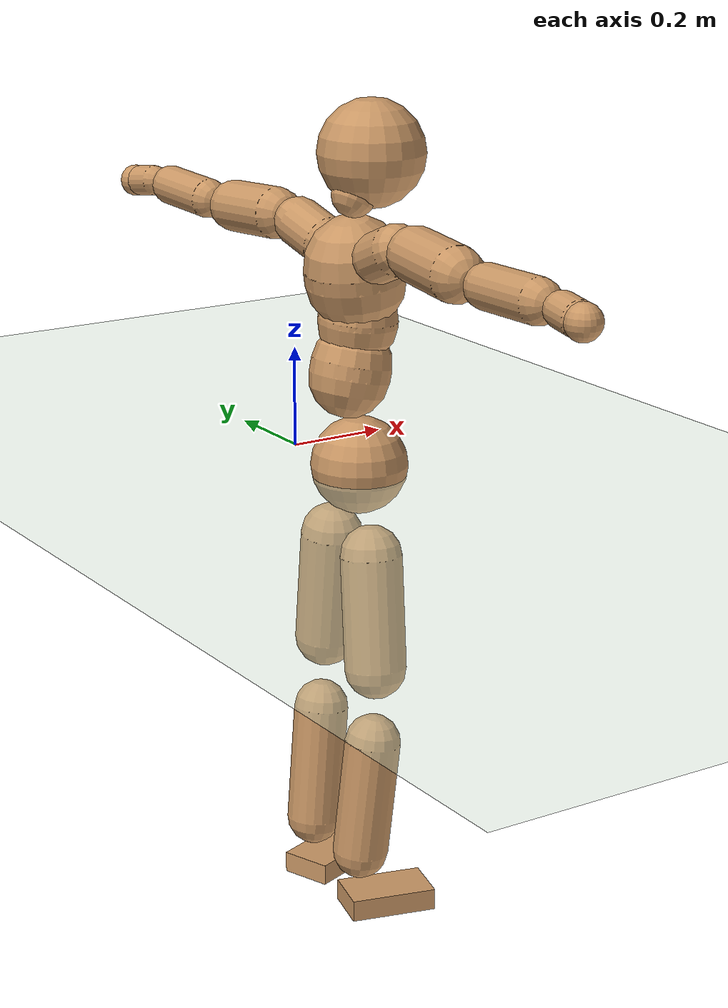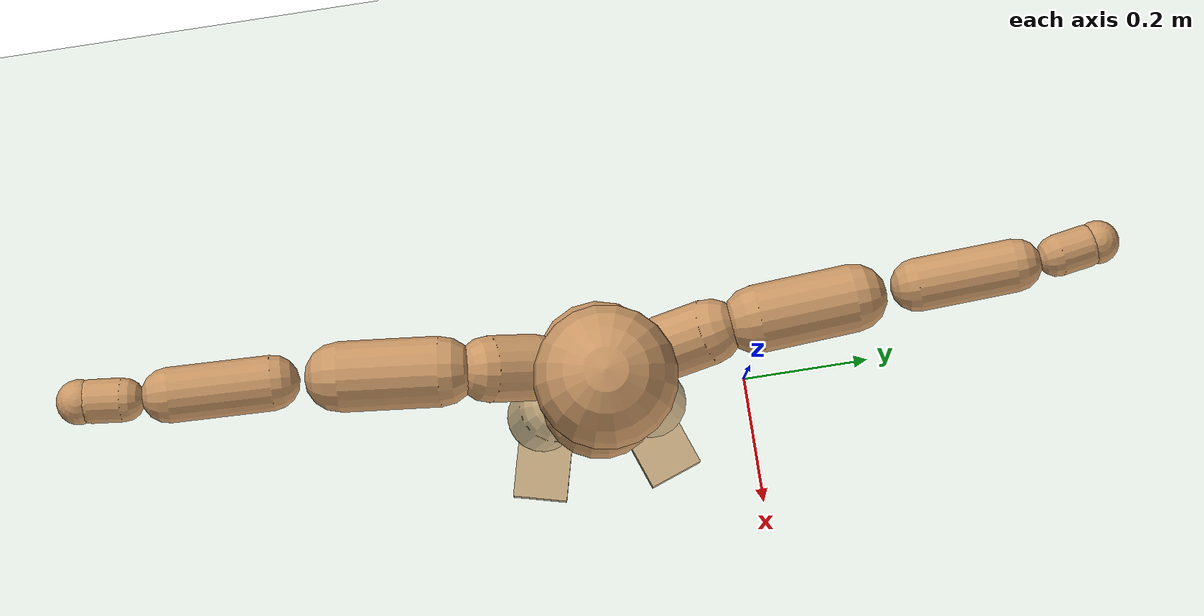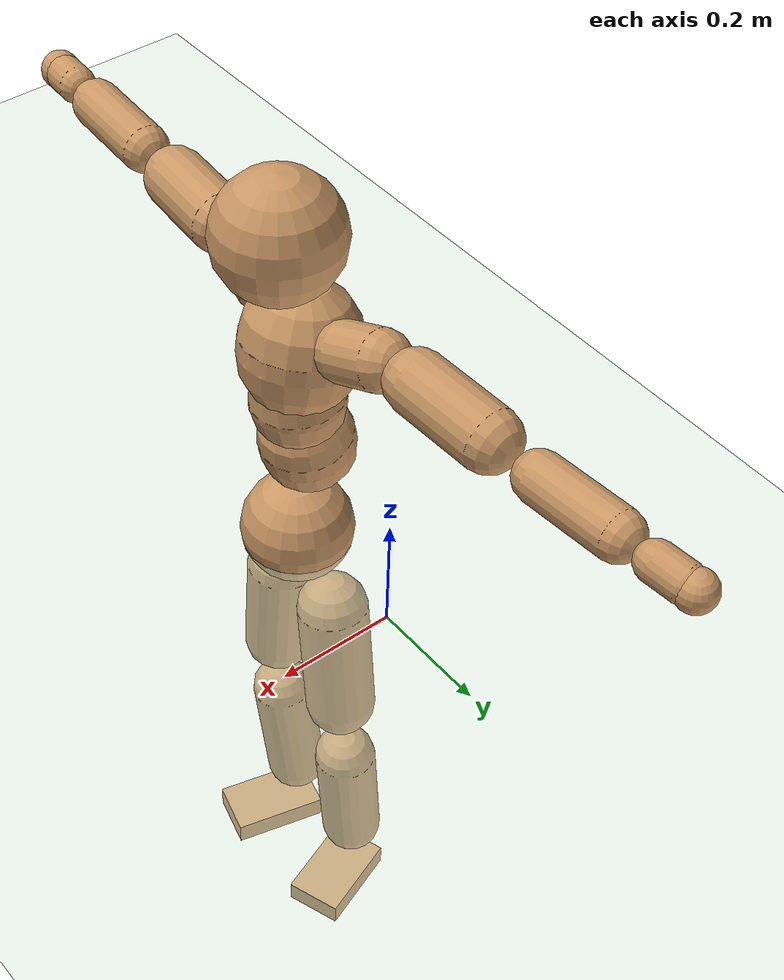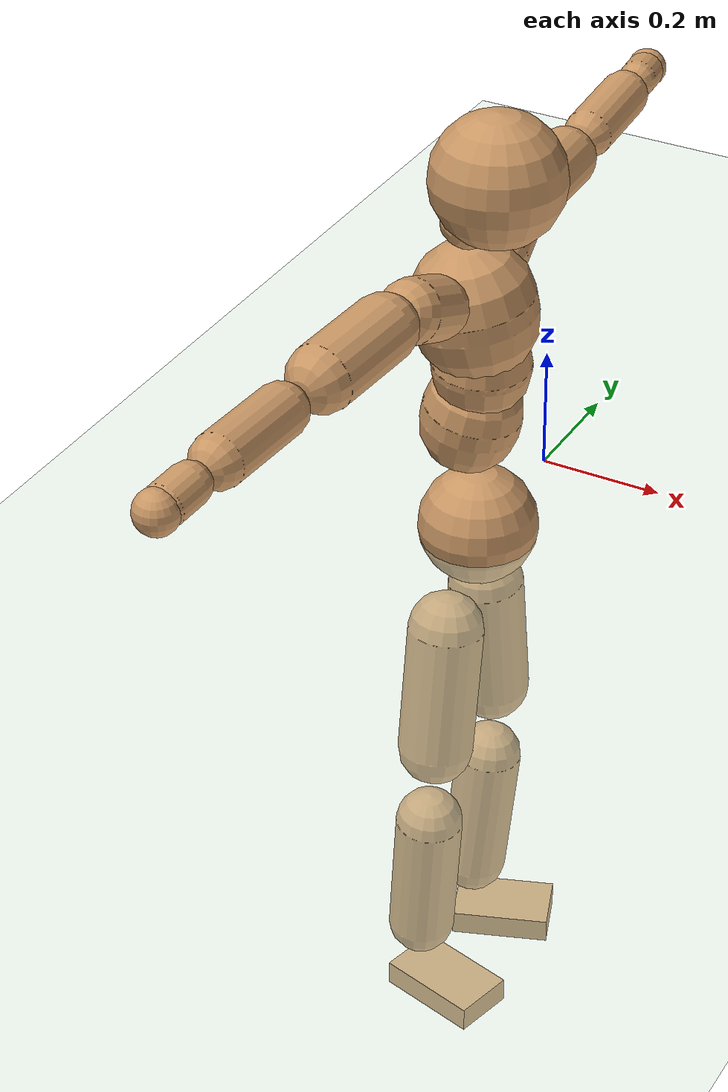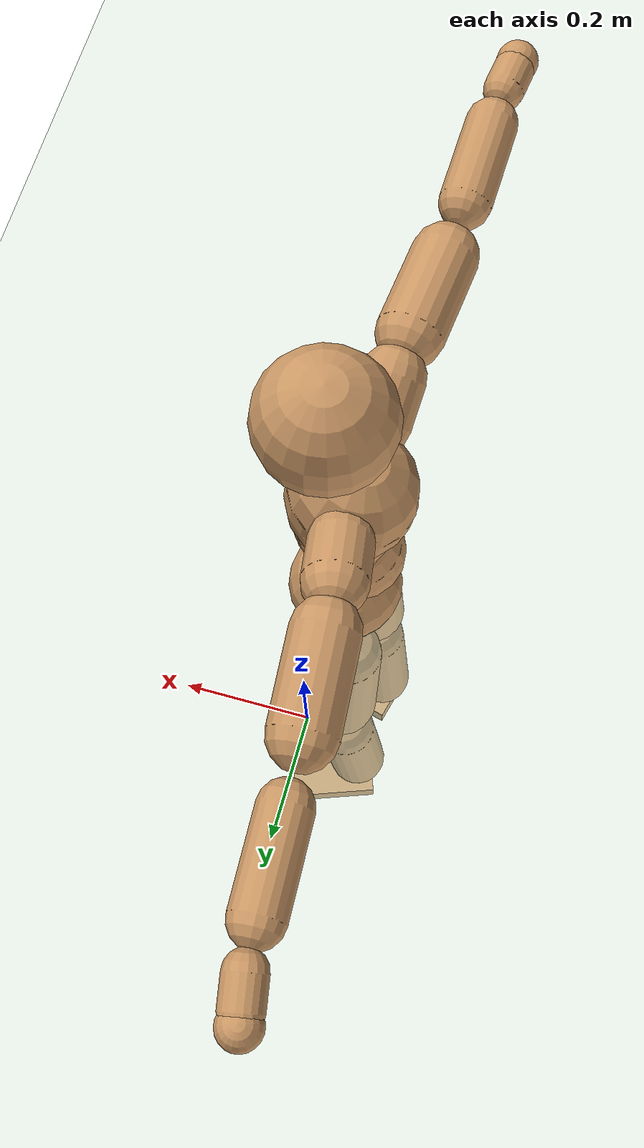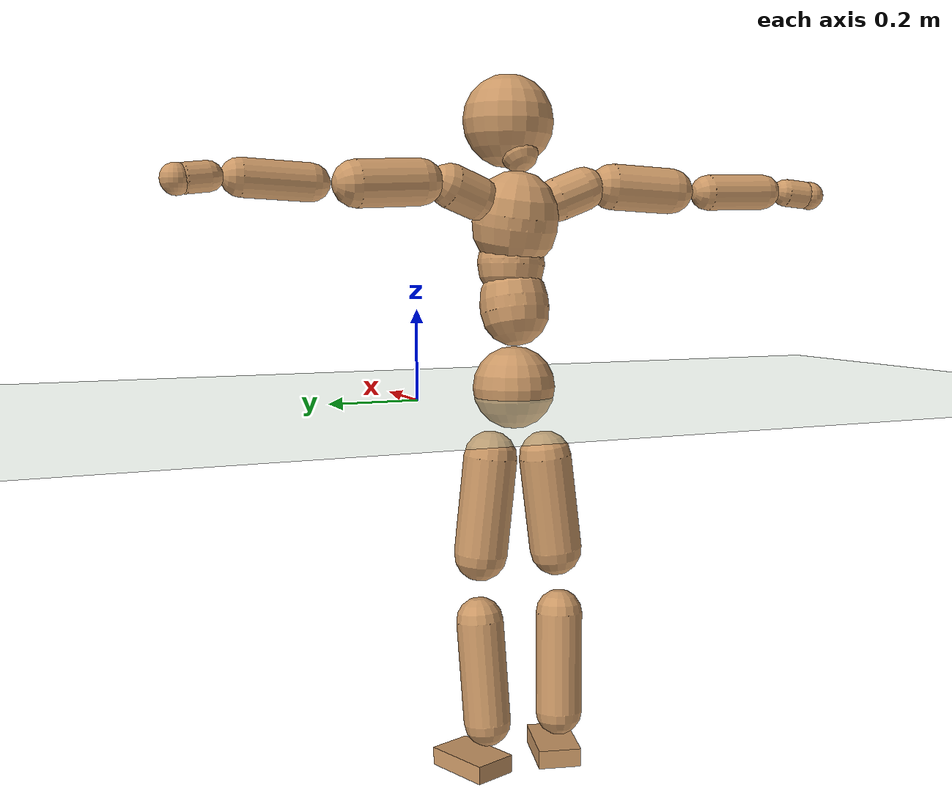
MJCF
<mujoco model="humanoid">
  <compiler coordinate="local" angle="radian"/>
  <default>
    <joint damping="0.0" armature="0.01" stiffness="0.0" limited="true"/>
    <geom conaffinity="1" condim="3" contype="7" margin="0.001" rgba="0.8 0.6 .4 1"/>
  </default>
  <asset>
    <texture type="skybox" builtin="gradient" rgb1=".4 .5 .6" rgb2="0 0 0" width="100" height="100"/>
    <texture builtin="flat" height="1278" mark="cross" markrgb="1 1 1" name="texgeom" random="0.01" rgb1="0.8 0.6 0.4" rgb2="0.8 0.6 0.4" type="cube" width="127"/>
    <texture builtin="checker" height="100" name="texplane" rgb1="0 0 0" rgb2="0.8 0.8 0.8" type="2d" width="100"/>
    <material name="MatPlane" reflectance="0.5" shininess="1" specular="1" texrepeat="60 60" texture="texplane"/>
    <material name="geom" texture="texgeom" texuniform="true"/>
  </asset>
  <worldbody>
    <light cutoff="100" diffuse="1 1 1" dir="-0 0 -1.3" directional="true" exponent="1" pos="0 0 1.3" specular=".1 .1 .1"/>
    <geom conaffinity="1" condim="3" name="floor" pos="0 0 0" rgba="0.8 0.9 0.8 1" size="100 100 .2" type="plane" material="MatPlane"/>
    <body name="Pelvis" pos="0.0009 -0.2327 0.0194">
      <freejoint name="Pelvis"/>
      <geom type="sphere" contype="1" conaffinity="1" density="500" size="0.0943" pos="0.0000 0.0000 0.0000" name="Pelvis"/>
      <body name="L_Hip" pos="-0.0205 0.059 -0.0807">
        <joint name="L_Hip_x" type="hinge" pos="0 0 0" axis="1 0 0" stiffness="800" damping="80" armature="0.02" range="-180.0000 180.0000"/>
        <joint name="L_Hip_y" type="hinge" pos="0 0 0" axis="0 1 0" stiffness="800" damping="80" armature="0.02" range="-180.0000 180.0000"/>
        <joint name="L_Hip_z" type="hinge" pos="0 0 0" axis="0 0 1" stiffness="800" damping="80" armature="0.02" range="-180.0000 180.0000"/>
        <geom type="capsule" contype="1" conaffinity="1" density="500" fromto="0.0005 0.0083 -0.0743 0.0019 0.0330 -0.2973" size="0.0607" name="L_Hip"/>
        <body name="L_Knee" pos="0.0024 0.0413 -0.3716">
          <joint name="L_Knee_x" type="hinge" pos="0 0 0" axis="1 0 0" stiffness="800" damping="80" armature="0.02" range="-180.0000 180.0000"/>
          <joint name="L_Knee_y" type="hinge" pos="0 0 0" axis="0 1 0" stiffness="800" damping="80" armature="0.02" range="-180.0000 180.0000"/>
          <joint name="L_Knee_z" type="hinge" pos="0 0 0" axis="0 0 1" stiffness="800" damping="80" armature="0.02" range="-180.0000 180.0000"/>
          <geom type="capsule" contype="1" conaffinity="1" density="500" fromto="-0.0075 -0.0027 -0.0789 -0.0299 -0.0107 -0.3156" size="0.054" name="L_Knee"/>
          <body name="L_Ankle" pos="-0.0374 -0.0134 -0.3945">
            <joint name="L_Ankle_x" type="hinge" pos="0 0 0" axis="1 0 0" stiffness="800" damping="80" armature="0.02" range="-180.0000 180.0000"/>
            <joint name="L_Ankle_y" type="hinge" pos="0 0 0" axis="0 1 0" stiffness="800" damping="80" armature="0.02" range="-180.0000 180.0000"/>
            <joint name="L_Ankle_z" type="hinge" pos="0 0 0" axis="0 0 1" stiffness="800" damping="80" armature="0.02" range="-180.0000 180.0000"/>
            <geom type="box" contype="1" conaffinity="1" density="500" pos="0.0570 0.0206 -0.0283" size="0.0815 0.0505 0.0209" quat="0.9849 0.0000 0.0000 0.1729" name="L_Ankle"/>
            <body name="L_Toe" pos="0.114 0.0413 -0.0565">
              <joint name="L_Toe_x" type="hinge" pos="0 0 0" axis="1 0 0" stiffness="500" damping="50" armature="0.02" range="-180.0000 180.0000"/>
              <joint name="L_Toe_y" type="hinge" pos="0 0 0" axis="0 1 0" stiffness="500" damping="50" armature="0.02" range="-180.0000 180.0000"/>
              <joint name="L_Toe_z" type="hinge" pos="0 0 0" axis="0 0 1" stiffness="500" damping="50" armature="0.02" range="-180.0000 180.0000"/>
              <geom type="box" contype="1" conaffinity="1" density="500" pos="0.0000 0.0000 0.0284" size="0.001 0.0024 0.0011" quat="0.9841 0.0000 0.0000 0.1777" name="L_Toe"/>
            </body>
          </body>
        </body>
      </body>
      <body name="R_Hip" pos="-0.0164 -0.0619 -0.0886">
        <joint name="R_Hip_x" type="hinge" pos="0 0 0" axis="1 0 0" stiffness="800" damping="80" armature="0.02" range="-180.0000 180.0000"/>
        <joint name="R_Hip_y" type="hinge" pos="0 0 0" axis="0 1 0" stiffness="800" damping="80" armature="0.02" range="-180.0000 180.0000"/>
        <joint name="R_Hip_z" type="hinge" pos="0 0 0" axis="0 0 1" stiffness="800" damping="80" armature="0.02" range="-180.0000 180.0000"/>
        <geom type="capsule" contype="1" conaffinity="1" density="500" fromto="-0.0017 -0.0084 -0.0736 -0.0069 -0.0338 -0.2942" size="0.0604" name="R_Hip"/>
        <body name="R_Knee" pos="-0.0086 -0.0422 -0.3678">
          <joint name="R_Knee_x" type="hinge" pos="0 0 0" axis="1 0 0" stiffness="800" damping="80" armature="0.02" range="-180.0000 180.0000"/>
          <joint name="R_Knee_y" type="hinge" pos="0 0 0" axis="0 1 0" stiffness="800" damping="80" armature="0.02" range="-180.0000 180.0000"/>
          <joint name="R_Knee_z" type="hinge" pos="0 0 0" axis="0 0 1" stiffness="800" damping="80" armature="0.02" range="-180.0000 180.0000"/>
          <geom type="capsule" contype="1" conaffinity="1" density="500" fromto="-0.0069 0.0034 -0.0777 -0.0276 0.0137 -0.3108" size="0.0545" name="R_Knee"/>
          <body name="R_Ankle" pos="-0.0345 0.0172 -0.3885">
            <joint name="R_Ankle_x" type="hinge" pos="0 0 0" axis="1 0 0" stiffness="800" damping="80" armature="0.02" range="-180.0000 180.0000"/>
            <joint name="R_Ankle_y" type="hinge" pos="0 0 0" axis="0 1 0" stiffness="800" damping="80" armature="0.02" range="-180.0000 180.0000"/>
            <joint name="R_Ankle_z" type="hinge" pos="0 0 0" axis="0 0 1" stiffness="800" damping="80" armature="0.02" range="-180.0000 180.0000"/>
            <geom type="box" contype="1" conaffinity="1" density="500" pos="0.0609 -0.0156 -0.0298" size="0.0853 0.05 0.0214" quat="0.9921 0.0000 0.0000 -0.1252" name="R_Ankle"/>
            <body name="R_Toe" pos="0.1219 -0.0312 -0.0595">
              <joint name="R_Toe_x" type="hinge" pos="0 0 0" axis="1 0 0" stiffness="500" damping="50" armature="0.02" range="-180.0000 180.0000"/>
              <joint name="R_Toe_y" type="hinge" pos="0 0 0" axis="0 1 0" stiffness="500" damping="50" armature="0.02" range="-180.0000 180.0000"/>
              <joint name="R_Toe_z" type="hinge" pos="0 0 0" axis="0 0 1" stiffness="500" damping="50" armature="0.02" range="-180.0000 180.0000"/>
              <geom type="box" contype="1" conaffinity="1" density="500" pos="0.0000 0.0000 0.0312" size="0.001 0.0024 0.0011" quat="0.9933 0.0000 0.0000 -0.1157" name="R_Toe"/>
            </body>
          </body>
        </body>
      </body>
      <body name="Torso" pos="-0.0317 0.0043 0.1201">
        <joint name="Torso_x" type="hinge" pos="0 0 0" axis="1 0 0" stiffness="1000" damping="100" armature="0.02" range="-180.0000 180.0000"/>
        <joint name="Torso_y" type="hinge" pos="0 0 0" axis="0 1 0" stiffness="1000" damping="100" armature="0.02" range="-180.0000 180.0000"/>
        <joint name="Torso_z" type="hinge" pos="0 0 0" axis="0 0 1" stiffness="1000" damping="100" armature="0.02" range="-180.0000 180.0000"/>
        <geom type="capsule" contype="1" conaffinity="1" density="500" fromto="0.0179 0.0023 0.0802 0.0119 0.0015 0.0535" size="0.0777" name="Torso"/>
        <body name="Spine" pos="0.0299 0.0039 0.1336">
          <joint name="Spine_x" type="hinge" pos="0 0 0" axis="1 0 0" stiffness="1000" damping="100" armature="0.02" range="-180.0000 180.0000"/>
          <joint name="Spine_y" type="hinge" pos="0 0 0" axis="0 1 0" stiffness="1000" damping="100" armature="0.02" range="-180.0000 180.0000"/>
          <joint name="Spine_z" type="hinge" pos="0 0 0" axis="0 0 1" stiffness="1000" damping="100" armature="0.02" range="-180.0000 180.0000"/>
          <geom type="capsule" contype="1" conaffinity="1" density="500" fromto="0.0020 -0.0018 0.0321 0.0013 -0.0012 0.0214" size="0.0765" name="Spine"/>
          <body name="Chest" pos="0.0033 -0.0029 0.0535">
            <joint name="Chest_x" type="hinge" pos="0 0 0" axis="1 0 0" stiffness="1000" damping="100" armature="0.02" range="-180.0000 180.0000"/>
            <joint name="Chest_y" type="hinge" pos="0 0 0" axis="0 1 0" stiffness="1000" damping="100" armature="0.02" range="-180.0000 180.0000"/>
            <joint name="Chest_z" type="hinge" pos="0 0 0" axis="0 0 1" stiffness="1000" damping="100" armature="0.02" range="-180.0000 180.0000"/>
            <geom type="capsule" contype="1" conaffinity="1" density="500" fromto="-0.0142 -0.0052 0.0824 -0.0095 -0.0035 0.0550" size="0.0966" name="Chest"/>
            <body name="Neck" pos="-0.0294 -0.0128 0.199">
              <joint name="Neck_x" type="hinge" pos="0 0 0" axis="1 0 0" stiffness="500" damping="50" armature="0.02" range="-180.0000 180.0000"/>
              <joint name="Neck_y" type="hinge" pos="0 0 0" axis="0 1 0" stiffness="500" damping="50" armature="0.02" range="-180.0000 180.0000"/>
              <joint name="Neck_z" type="hinge" pos="0 0 0" axis="0 0 1" stiffness="500" damping="50" armature="0.02" range="-180.0000 180.0000"/>
              <geom type="capsule" contype="1" conaffinity="1" density="500" fromto="0.0106 0.0019 0.0180 0.0424 0.0075 0.0720" size="0.0435" name="Neck"/>
              <body name="Head" pos="0.053 0.0093 0.09">
                <joint name="Head_x" type="hinge" pos="0 0 0" axis="1 0 0" stiffness="500" damping="50" armature="0.02" range="-180.0000 180.0000"/>
                <joint name="Head_y" type="hinge" pos="0 0 0" axis="0 1 0" stiffness="500" damping="50" armature="0.02" range="-180.0000 180.0000"/>
                <joint name="Head_z" type="hinge" pos="0 0 0" axis="0 0 1" stiffness="500" damping="50" armature="0.02" range="-180.0000 180.0000"/>
                <geom type="sphere" contype="1" conaffinity="1" density="500" size="0.1027" pos="0.0000 0.0000 0.0000" name="Head"/>
              </body>
            </body>
            <body name="L_Thorax" pos="-0.0192 0.0668 0.1064">
              <joint name="L_Thorax_x" type="hinge" pos="0 0 0" axis="1 0 0" stiffness="500" damping="50" armature="0.02" range="-180.0000 180.0000"/>
              <joint name="L_Thorax_y" type="hinge" pos="0 0 0" axis="0 1 0" stiffness="500" damping="50" armature="0.02" range="-180.0000 180.0000"/>
              <joint name="L_Thorax_z" type="hinge" pos="0 0 0" axis="0 0 1" stiffness="500" damping="50" armature="0.02" range="-180.0000 180.0000"/>
              <geom type="capsule" contype="1" conaffinity="1" density="500" fromto="-0.0037 0.0229 0.0083 -0.0147 0.0915 0.0332" size="0.0484" name="L_Thorax"/>
              <body name="L_Shoulder" pos="-0.0184 0.1143 0.0414">
                <joint name="L_Shoulder_x" type="hinge" pos="0 0 0" axis="1 0 0" stiffness="500" damping="50" armature="0.02" range="-720.0000 720.0000"/>
                <joint name="L_Shoulder_y" type="hinge" pos="0 0 0" axis="0 1 0" stiffness="500" damping="50" armature="0.02" range="-720.0000 720.0000"/>
                <joint name="L_Shoulder_z" type="hinge" pos="0 0 0" axis="0 0 1" stiffness="500" damping="50" armature="0.02" range="-720.0000 720.0000"/>
                <geom type="capsule" contype="1" conaffinity="1" density="500" fromto="-0.0033 0.0479 -0.0026 -0.0131 0.1915 -0.0103" size="0.0504" name="L_Shoulder"/>
                <body name="L_Elbow" pos="-0.0163 0.2394 -0.0129">
                  <joint name="L_Elbow_x" type="hinge" pos="0 0 0" axis="1 0 0" stiffness="500" damping="50" armature="0.02" range="-720.0000 720.0000"/>
                  <joint name="L_Elbow_y" type="hinge" pos="0 0 0" axis="0 1 0" stiffness="500" damping="50" armature="0.02" range="-720.0000 720.0000"/>
                  <joint name="L_Elbow_z" type="hinge" pos="0 0 0" axis="0 0 1" stiffness="500" damping="50" armature="0.02" range="-720.0000 720.0000"/>
                  <geom type="capsule" contype="1" conaffinity="1" density="500" fromto="-0.0020 0.0481 0.0019 -0.0079 0.1924 0.0076" size="0.0395" name="L_Elbow"/>
                  <body name="L_Wrist" pos="-0.0099 0.2405 0.0095">
                    <joint name="L_Wrist_x" type="hinge" pos="0 0 0" axis="1 0 0" stiffness="300" damping="30" armature="0.02" range="-180.0000 180.0000"/>
                    <joint name="L_Wrist_y" type="hinge" pos="0 0 0" axis="0 1 0" stiffness="300" damping="30" armature="0.02" range="-180.0000 180.0000"/>
                    <joint name="L_Wrist_z" type="hinge" pos="0 0 0" axis="0 0 1" stiffness="300" damping="30" armature="0.02" range="-180.0000 180.0000"/>
                    <geom type="capsule" contype="1" conaffinity="1" density="500" fromto="-0.0028 0.0155 -0.0019 -0.0111 0.0620 -0.0077" size="0.0309" name="L_Wrist"/>
                    <body name="L_Hand" pos="-0.0139 0.0775 -0.0096">
                      <joint name="L_Hand_x" type="hinge" pos="0 0 0" axis="1 0 0" stiffness="300" damping="30" armature="0.02" range="-180.0000 180.0000"/>
                      <joint name="L_Hand_y" type="hinge" pos="0 0 0" axis="0 1 0" stiffness="300" damping="30" armature="0.02" range="-180.0000 180.0000"/>
                      <joint name="L_Hand_z" type="hinge" pos="0 0 0" axis="0 0 1" stiffness="300" damping="30" armature="0.02" range="-180.0000 180.0000"/>
                      <geom type="sphere" contype="1" conaffinity="1" density="500" size="0.0320" pos="0.0000 0.0000 0.0000" name="L_Hand"/>
                    </body>
                  </body>
                </body>
              </body>
            </body>
            <body name="R_Thorax" pos="-0.0223 -0.08 0.1068">
              <joint name="R_Thorax_x" type="hinge" pos="0 0 0" axis="1 0 0" stiffness="500" damping="50" armature="0.02" range="-180.0000 180.0000"/>
              <joint name="R_Thorax_y" type="hinge" pos="0 0 0" axis="0 1 0" stiffness="500" damping="50" armature="0.02" range="-180.0000 180.0000"/>
              <joint name="R_Thorax_z" type="hinge" pos="0 0 0" axis="0 0 1" stiffness="500" damping="50" armature="0.02" range="-180.0000 180.0000"/>
              <geom type="capsule" contype="1" conaffinity="1" density="500" fromto="-0.0016 -0.0214 0.0086 -0.0062 -0.0858 0.0343" size="0.0492" name="R_Thorax"/>
              <body name="R_Shoulder" pos="-0.0078 -0.1072 0.0429">
                <joint name="R_Shoulder_x" type="hinge" pos="0 0 0" axis="1 0 0" stiffness="500" damping="50" armature="0.02" range="-720.0000 720.0000"/>
                <joint name="R_Shoulder_y" type="hinge" pos="0 0 0" axis="0 1 0" stiffness="500" damping="50" armature="0.02" range="-720.0000 720.0000"/>
                <joint name="R_Shoulder_z" type="hinge" pos="0 0 0" axis="0 0 1" stiffness="500" damping="50" armature="0.02" range="-720.0000 720.0000"/>
                <geom type="capsule" contype="1" conaffinity="1" density="500" fromto="-0.0051 -0.0486 -0.0024 -0.0203 -0.1945 -0.0097" size="0.0519" name="R_Shoulder"/>
                <body name="R_Elbow" pos="-0.0253 -0.2432 -0.0122">
                  <joint name="R_Elbow_x" type="hinge" pos="0 0 0" axis="1 0 0" stiffness="500" damping="50" armature="0.02" range="-720.0000 720.0000"/>
                  <joint name="R_Elbow_y" type="hinge" pos="0 0 0" axis="0 1 0" stiffness="500" damping="50" armature="0.02" range="-720.0000 720.0000"/>
                  <joint name="R_Elbow_z" type="hinge" pos="0 0 0" axis="0 0 1" stiffness="500" damping="50" armature="0.02" range="-720.0000 720.0000"/>
                  <geom type="capsule" contype="1" conaffinity="1" density="500" fromto="-0.0016 -0.0499 0.0015 -0.0063 -0.1994 0.0060" size="0.041" name="R_Elbow"/>
                  <body name="R_Wrist" pos="-0.0078 -0.2493 0.0075">
                    <joint name="R_Wrist_x" type="hinge" pos="0 0 0" axis="1 0 0" stiffness="300" damping="30" armature="0.02" range="-180.0000 180.0000"/>
                    <joint name="R_Wrist_y" type="hinge" pos="0 0 0" axis="0 1 0" stiffness="300" damping="30" armature="0.02" range="-180.0000 180.0000"/>
                    <joint name="R_Wrist_z" type="hinge" pos="0 0 0" axis="0 0 1" stiffness="300" damping="30" armature="0.02" range="-180.0000 180.0000"/>
                    <geom type="capsule" contype="1" conaffinity="1" density="500" fromto="-0.0018 -0.0163 -0.0016 -0.0073 -0.0651 -0.0063" size="0.0323" name="R_Wrist"/>
                    <body name="R_Hand" pos="-0.0091 -0.0814 -0.0079">
                      <joint name="R_Hand_x" type="hinge" pos="0 0 0" axis="1 0 0" stiffness="300" damping="30" armature="0.02" range="-180.0000 180.0000"/>
                      <joint name="R_Hand_y" type="hinge" pos="0 0 0" axis="0 1 0" stiffness="300" damping="30" armature="0.02" range="-180.0000 180.0000"/>
                      <joint name="R_Hand_z" type="hinge" pos="0 0 0" axis="0 0 1" stiffness="300" damping="30" armature="0.02" range="-180.0000 180.0000"/>
                      <geom type="sphere" contype="1" conaffinity="1" density="500" size="0.0333" pos="0.0000 0.0000 0.0000" name="R_Hand"/>
                    </body>
                  </body>
                </body>
              </body>
            </body>
          </body>
        </body>
      </body>
    </body>
  </worldbody>
  <actuator>
    <motor name="L_Hip_x" joint="L_Hip_x" gear="500"/>
    <motor name="L_Hip_y" joint="L_Hip_y" gear="500"/>
    <motor name="L_Hip_z" joint="L_Hip_z" gear="500"/>
    <motor name="L_Knee_x" joint="L_Knee_x" gear="500"/>
    <motor name="L_Knee_y" joint="L_Knee_y" gear="500"/>
    <motor name="L_Knee_z" joint="L_Knee_z" gear="500"/>
    <motor name="L_Ankle_x" joint="L_Ankle_x" gear="500"/>
    <motor name="L_Ankle_y" joint="L_Ankle_y" gear="500"/>
    <motor name="L_Ankle_z" joint="L_Ankle_z" gear="500"/>
    <motor name="L_Toe_x" joint="L_Toe_x" gear="500"/>
    <motor name="L_Toe_y" joint="L_Toe_y" gear="500"/>
    <motor name="L_Toe_z" joint="L_Toe_z" gear="500"/>
    <motor name="R_Hip_x" joint="R_Hip_x" gear="500"/>
    <motor name="R_Hip_y" joint="R_Hip_y" gear="500"/>
    <motor name="R_Hip_z" joint="R_Hip_z" gear="500"/>
    <motor name="R_Knee_x" joint="R_Knee_x" gear="500"/>
    <motor name="R_Knee_y" joint="R_Knee_y" gear="500"/>
    <motor name="R_Knee_z" joint="R_Knee_z" gear="500"/>
    <motor name="R_Ankle_x" joint="R_Ankle_x" gear="500"/>
    <motor name="R_Ankle_y" joint="R_Ankle_y" gear="500"/>
    <motor name="R_Ankle_z" joint="R_Ankle_z" gear="500"/>
    <motor name="R_Toe_x" joint="R_Toe_x" gear="500"/>
    <motor name="R_Toe_y" joint="R_Toe_y" gear="500"/>
    <motor name="R_Toe_z" joint="R_Toe_z" gear="500"/>
    <motor name="Torso_x" joint="Torso_x" gear="500"/>
    <motor name="Torso_y" joint="Torso_y" gear="500"/>
    <motor name="Torso_z" joint="Torso_z" gear="500"/>
    <motor name="Spine_x" joint="Spine_x" gear="500"/>
    <motor name="Spine_y" joint="Spine_y" gear="500"/>
    <motor name="Spine_z" joint="Spine_z" gear="500"/>
    <motor name="Chest_x" joint="Chest_x" gear="500"/>
    <motor name="Chest_y" joint="Chest_y" gear="500"/>
    <motor name="Chest_z" joint="Chest_z" gear="500"/>
    <motor name="Neck_x" joint="Neck_x" gear="500"/>
    <motor name="Neck_y" joint="Neck_y" gear="500"/>
    <motor name="Neck_z" joint="Neck_z" gear="500"/>
    <motor name="Head_x" joint="Head_x" gear="500"/>
    <motor name="Head_y" joint="Head_y" gear="500"/>
    <motor name="Head_z" joint="Head_z" gear="500"/>
    <motor name="L_Thorax_x" joint="L_Thorax_x" gear="500"/>
    <motor name="L_Thorax_y" joint="L_Thorax_y" gear="500"/>
    <motor name="L_Thorax_z" joint="L_Thorax_z" gear="500"/>
    <motor name="L_Shoulder_x" joint="L_Shoulder_x" gear="500"/>
    <motor name="L_Shoulder_y" joint="L_Shoulder_y" gear="500"/>
    <motor name="L_Shoulder_z" joint="L_Shoulder_z" gear="500"/>
    <motor name="L_Elbow_x" joint="L_Elbow_x" gear="500"/>
    <motor name="L_Elbow_y" joint="L_Elbow_y" gear="500"/>
    <motor name="L_Elbow_z" joint="L_Elbow_z" gear="500"/>
    <motor name="L_Wrist_x" joint="L_Wrist_x" gear="500"/>
    <motor name="L_Wrist_y" joint="L_Wrist_y" gear="500"/>
    <motor name="L_Wrist_z" joint="L_Wrist_z" gear="500"/>
    <motor name="L_Hand_x" joint="L_Hand_x" gear="500"/>
    <motor name="L_Hand_y" joint="L_Hand_y" gear="500"/>
    <motor name="L_Hand_z" joint="L_Hand_z" gear="500"/>
    <motor name="R_Thorax_x" joint="R_Thorax_x" gear="500"/>
    <motor name="R_Thorax_y" joint="R_Thorax_y" gear="500"/>
    <motor name="R_Thorax_z" joint="R_Thorax_z" gear="500"/>
    <motor name="R_Shoulder_x" joint="R_Shoulder_x" gear="500"/>
    <motor name="R_Shoulder_y" joint="R_Shoulder_y" gear="500"/>
    <motor name="R_Shoulder_z" joint="R_Shoulder_z" gear="500"/>
    <motor name="R_Elbow_x" joint="R_Elbow_x" gear="500"/>
    <motor name="R_Elbow_y" joint="R_Elbow_y" gear="500"/>
    <motor name="R_Elbow_z" joint="R_Elbow_z" gear="500"/>
    <motor name="R_Wrist_x" joint="R_Wrist_x" gear="500"/>
    <motor name="R_Wrist_y" joint="R_Wrist_y" gear="500"/>
    <motor name="R_Wrist_z" joint="R_Wrist_z" gear="500"/>
    <motor name="R_Hand_x" joint="R_Hand_x" gear="500"/>
    <motor name="R_Hand_y" joint="R_Hand_y" gear="500"/>
    <motor name="R_Hand_z" joint="R_Hand_z" gear="500"/>
  </actuator>
  <contact>
    <exclude body1="Torso" body2="Chest"/>
    <exclude body1="Head" body2="Chest"/>
    <exclude body1="R_Knee" body2="R_Toe"/>
    <exclude body1="R_Knee" body2="L_Ankle"/>
    <exclude body1="R_Knee" body2="L_Toe"/>
    <exclude body1="L_Knee" body2="L_Toe"/>
    <exclude body1="L_Knee" body2="R_Ankle"/>
    <exclude body1="L_Knee" body2="R_Toe"/>
    <exclude body1="L_Shoulder" body2="Chest"/>
    <exclude body1="R_Shoulder" body2="Chest"/>
  </contact>
  <sensor/>
  <size njmax="700" nconmax="700"/>
</mujoco>
